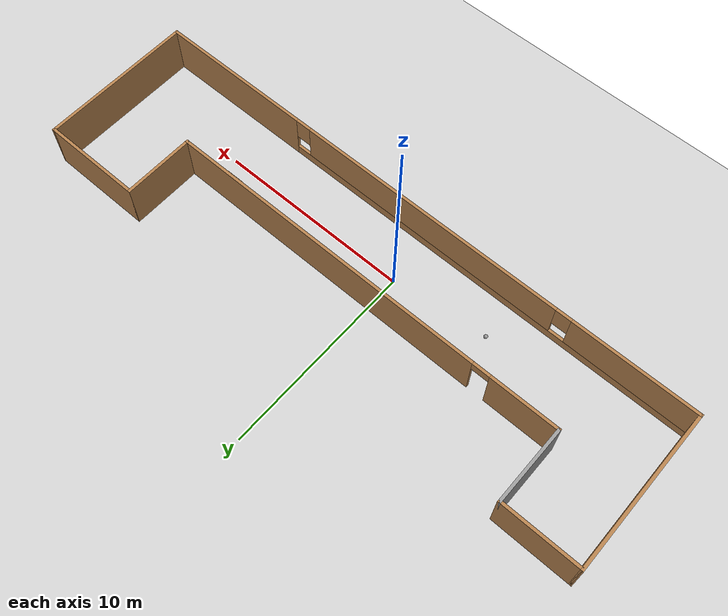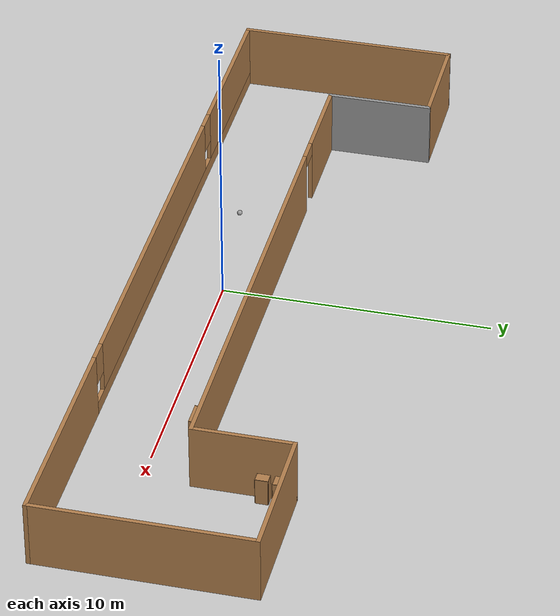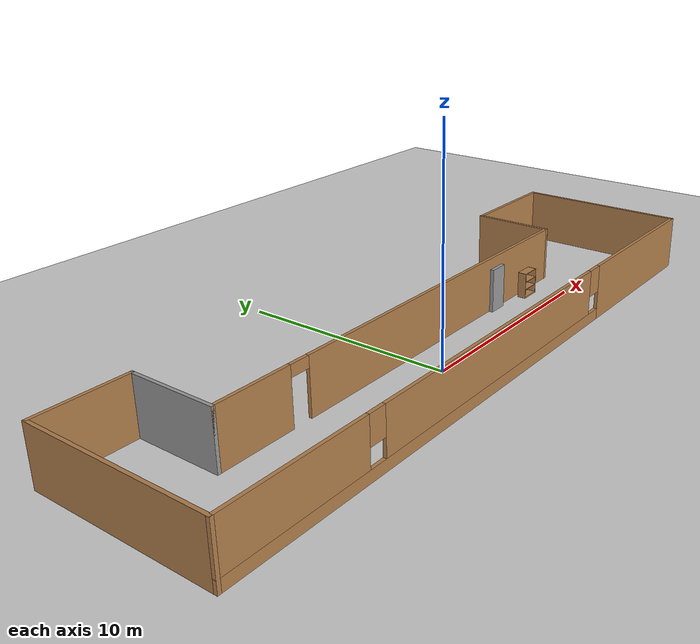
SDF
<sdf version="1.6">
 <world name="default">
  <plugin name="hello" filename="libhello.so"/>
  <light name="sun" type="directional">
   <pose>0 0 10 0 -0 0</pose>
   <diffuse>0.8 0.8 0.8 1</diffuse>
   <specular>0.2 0.2 0.2 1</specular>
   <attenuation>
    <range>1000</range>
    <constant>0.9</constant>
    <linear>0.01</linear>
    <quadratic>0.001</quadratic>
   </attenuation>
   <direction>-0.5 0.1 -0.9</direction>
   <spot><inner_angle>0</inner_angle><outer_angle>0</outer_angle><falloff>0</falloff></spot>
  </light>
  <model name="ground_plane">
   <static>1</static>
   <link name="link">
    <collision name="collision">
     <geometry><plane><normal>0 0 1</normal><size>100 100</size></plane></geometry>
     <surface>
      <contact><collide_bitmask>65535</collide_bitmask></contact>
      <friction><ode><mu>100</mu><mu2>50</mu2></ode></friction>
     </surface>
    </collision>
    <visual name="visual">
     <cast_shadows>0</cast_shadows>
     <geometry><plane><normal>0 0 1</normal><size>100 100</size></plane></geometry>
     <material>
      <script><uri>file://media/materials/scripts/gazebo.material</uri><name>Gazebo/Grey</name></script>
     </material>
    </visual>
   </link>
  </model>
  <gravity>0 0 -9.8</gravity>
  <magnetic_field>6e-06 2.3e-05 -4.2e-05</magnetic_field>
  <atmosphere type="adiabatic"/>
  <physics name="default_physics" default="0" type="ode">
   <max_step_size>0.001</max_step_size>
   <real_time_factor>1</real_time_factor>
   <real_time_update_rate>1000</real_time_update_rate>
  </physics>
  <scene><ambient>0.4 0.4 0.4 1</ambient><background>0.7 0.7 0.7 1</background><shadows>1</shadows></scene>
  <spherical_coordinates>
   <surface_model>EARTH_WGS84</surface_model>
   <latitude_deg>0</latitude_deg>
   <longitude_deg>0</longitude_deg>
   <elevation>0</elevation>
   <heading_deg>0</heading_deg>
  </spherical_coordinates>
  <model name="building1">
   <pose>1.12546 1.55416 0 0 -0 0</pose>
   <link name="Door_1">
    <collision name="Door_1_Collision">
     <geometry><box><size>0.9 0.17 2</size></box></geometry>
     <pose>0 0 1 0 -0 0</pose>
    </collision>
    <visual name="Door_1_Visual">
     <pose>0 0 1 0 -0 0</pose>
     <geometry><box><size>0.9 0.17 2</size></box></geometry>
     <material>
      <script><uri>file://media/materials/scripts/gazebo.material</uri><name>Gazebo/Grey</name></script>
     </material>
    </visual>
    <pose>5.38445 0.037312 0 0 -0 0</pose>
   </link>
   <link name="Wall_1">
    <collision name="Wall_1_Collision">
     <geometry><box><size>4 0.15 2.5</size></box></geometry>
     <pose>0 0 1.25 0 -0 0</pose>
    </collision>
    <visual name="Wall_1_Visual">
     <pose>0 0 1.25 0 -0 0</pose>
     <geometry><box><size>4 0.15 2.5</size></box></geometry>
     <material>
      <script><uri>file://media/materials/scripts/gazebo.material</uri><name>Gazebo/Wood</name></script>
      <ambient>1 1 1 1</ambient>
     </material>
     <meta><layer>0</layer></meta>
    </visual>
    <pose>-13.075 4.05 0 0 -0 0</pose>
   </link>
   <link name="Wall_2">
    <collision name="Wall_2_Collision">
     <geometry><box><size>4 0.15 2.5</size></box></geometry>
     <pose>0 0 1.25 0 -0 0</pose>
    </collision>
    <visual name="Wall_2_Visual">
     <pose>0 0 1.25 0 -0 0</pose>
     <geometry><box><size>4 0.15 2.5</size></box></geometry>
     <material>
      <script><uri>file://media/materials/scripts/gazebo.material</uri><name>Gazebo/Grey</name></script>
      <ambient>1 1 1 1</ambient>
     </material>
     <meta><layer>0</layer></meta>
    </visual>
    <pose>-11.15 2.125 0 0 0 -1.5708</pose>
   </link>
   <link name="Wall_3">
    <pose>-0.6 0.2 0 0 -0 0</pose>
    <visual name="Wall_3_Visual_0">
     <pose>-8.85857 0 1.25 0 -0 0</pose>
     <geometry><box><size>3.53286 0.15 2.5</size></box></geometry>
     <material>
      <script><uri>file://media/materials/scripts/gazebo.material</uri><name>Gazebo/Wood</name></script>
      <ambient>1 1 1 1</ambient>
     </material>
     <meta><layer>0</layer></meta>
    </visual>
    <collision name="Wall_3_Collision_0">
     <geometry><box><size>3.53286 0.15 2.5</size></box></geometry>
     <pose>-8.85857 0 1.25 0 -0 0</pose>
    </collision>
    <visual name="Wall_3_Visual_1">
     <pose>2.21643 0 1.25 0 -0 0</pose>
     <geometry><box><size>16.8171 0.15 2.5</size></box></geometry>
     <material>
      <script><uri>file://media/materials/scripts/gazebo.material</uri><name>Gazebo/Wood</name></script>
      <ambient>1 1 1 1</ambient>
     </material>
     <meta><layer>0</layer></meta>
    </visual>
    <collision name="Wall_3_Collision_1">
     <geometry><box><size>16.8171 0.15 2.5</size></box></geometry>
     <pose>2.21643 0 1.25 0 -0 0</pose>
    </collision>
    <visual name="Wall_3_Visual_2">
     <pose>-6.64214 0 2.25 0 -0 0</pose>
     <geometry><box><size>0.9 0.15 0.5</size></box></geometry>
     <material>
      <script><uri>file://media/materials/scripts/gazebo.material</uri><name>Gazebo/Wood</name></script>
      <ambient>1 1 1 1</ambient>
     </material>
     <meta><layer>0</layer></meta>
    </visual>
    <collision name="Wall_3_Collision_2">
     <geometry><box><size>0.9 0.15 0.5</size></box></geometry>
     <pose>-6.64214 0 2.25 0 -0 0</pose>
    </collision>
   </link>
   <link name="Wall_4">
    <collision name="Wall_4_Collision">
     <geometry><box><size>3.75 0.15 2.5</size></box></geometry>
     <pose>0 0 1.25 0 -0 0</pose>
    </collision>
    <visual name="Wall_4_Visual">
     <pose>0 0 1.25 0 -0 0</pose>
     <geometry><box><size>3.75 0.15 2.5</size></box></geometry>
     <material>
      <script><uri>file://media/materials/scripts/gazebo.material</uri><name>Gazebo/Wood</name></script>
      <ambient>1 1 1 1</ambient>
     </material>
     <meta><layer>0</layer></meta>
    </visual>
    <pose>9.95 2 0 0 -0 1.5708</pose>
   </link>
   <link name="Wall_5">
    <collision name="Wall_5_Collision">
     <geometry><box><size>5.25 0.15 2.5</size></box></geometry>
     <pose>0 0 1.25 0 -0 0</pose>
    </collision>
    <visual name="Wall_5_Visual">
     <pose>0 0 1.25 0 -0 0</pose>
     <geometry><box><size>5.25 0.15 2.5</size></box></geometry>
     <material>
      <script><uri>file://media/materials/scripts/gazebo.material</uri><name>Gazebo/Wood</name></script>
      <ambient>1 1 1 1</ambient>
     </material>
     <meta><layer>0</layer></meta>
    </visual>
    <pose>12.5 3.8 0 0 -0 0</pose>
   </link>
   <link name="Wall_6">
    <collision name="Wall_6_Collision">
     <geometry><box><size>8 0.15 2.5</size></box></geometry>
     <pose>0 0 1.25 0 -0 0</pose>
    </collision>
    <visual name="Wall_6_Visual">
     <pose>0 0 1.25 0 -0 0</pose>
     <geometry><box><size>8 0.15 2.5</size></box></geometry>
     <material>
      <script><uri>file://media/materials/scripts/gazebo.material</uri><name>Gazebo/Wood</name></script>
      <ambient>1 1 1 1</ambient>
     </material>
     <meta><layer>0</layer></meta>
    </visual>
    <pose>15.05 -0.125 0 0 0 -1.5708</pose>
   </link>
   <link name="Wall_7">
    <pose>0 -4.05 0 0 -0 3.14159</pose>
    <visual name="Wall_7_Visual_0">
     <pose>-11.0433 0 1.25 0 -0 0</pose>
     <geometry><box><size>8.16349 0.15 2.5</size></box></geometry>
     <material>
      <script><uri>file://media/materials/scripts/gazebo.material</uri><name>Gazebo/Wood</name></script>
      <ambient>1 1 1 1</ambient>
     </material>
     <meta><layer>0</layer></meta>
    </visual>
    <collision name="Wall_7_Collision_0">
     <geometry><box><size>8.16349 0.15 2.5</size></box></geometry>
     <pose>-11.0433 0 1.25 0 -0 0</pose>
    </collision>
    <visual name="Wall_7_Visual_1">
     <pose>4.08175 0 0.25 0 -0 0</pose>
     <geometry><box><size>22.0865 0.15 0.5</size></box></geometry>
     <material>
      <script><uri>file://media/materials/scripts/gazebo.material</uri><name>Gazebo/Wood</name></script>
      <ambient>1 1 1 1</ambient>
     </material>
     <meta><layer>0</layer></meta>
    </visual>
    <collision name="Wall_7_Collision_1">
     <geometry><box><size>22.0865 0.15 0.5</size></box></geometry>
     <pose>4.08175 0 0.25 0 -0 0</pose>
    </collision>
    <visual name="Wall_7_Visual_2">
     <pose>0.87534 0 1.5 0 -0 0</pose>
     <geometry><box><size>14.0737 0.15 2</size></box></geometry>
     <material>
      <script><uri>file://media/materials/scripts/gazebo.material</uri><name>Gazebo/Wood</name></script>
      <ambient>1 1 1 1</ambient>
     </material>
     <meta><layer>0</layer></meta>
    </visual>
    <collision name="Wall_7_Collision_2">
     <geometry><box><size>14.0737 0.15 2</size></box></geometry>
     <pose>0.87534 0 1.5 0 -0 0</pose>
    </collision>
    <visual name="Wall_7_Visual_3">
     <pose>11.9186 0 1.5 0 -0 0</pose>
     <geometry><box><size>6.41281 0.15 2</size></box></geometry>
     <material>
      <script><uri>file://media/materials/scripts/gazebo.material</uri><name>Gazebo/Wood</name></script>
      <ambient>1 1 1 1</ambient>
     </material>
     <meta><layer>0</layer></meta>
    </visual>
    <collision name="Wall_7_Collision_3">
     <geometry><box><size>6.41281 0.15 2</size></box></geometry>
     <pose>11.9186 0 1.5 0 -0 0</pose>
    </collision>
    <visual name="Wall_7_Visual_4">
     <pose>-6.56151 0 1.9 0 -0 0</pose>
     <geometry><box><size>0.8 0.15 1.2</size></box></geometry>
     <material>
      <script><uri>file://media/materials/scripts/gazebo.material</uri><name>Gazebo/Wood</name></script>
      <ambient>1 1 1 1</ambient>
     </material>
     <meta><layer>0</layer></meta>
    </visual>
    <collision name="Wall_7_Collision_4">
     <geometry><box><size>0.8 0.15 1.2</size></box></geometry>
     <pose>-6.56151 0 1.9 0 -0 0</pose>
    </collision>
    <visual name="Wall_7_Visual_5">
     <pose>8.31219 0 1.9 0 -0 0</pose>
     <geometry><box><size>0.8 0.15 1.2</size></box></geometry>
     <material>
      <script><uri>file://media/materials/scripts/gazebo.material</uri><name>Gazebo/Wood</name></script>
      <ambient>1 1 1 1</ambient>
     </material>
     <meta><layer>0</layer></meta>
    </visual>
    <collision name="Wall_7_Collision_5">
     <geometry><box><size>0.8 0.15 1.2</size></box></geometry>
     <pose>8.31219 0 1.9 0 -0 0</pose>
    </collision>
   </link>
   <link name="Wall_8">
    <collision name="Wall_8_Collision">
     <geometry><box><size>8.25 0.15 2.5</size></box></geometry>
     <pose>0 0 1.25 0 -0 0</pose>
    </collision>
    <visual name="Wall_8_Visual">
     <pose>0 0 1.25 0 -0 0</pose>
     <geometry><box><size>8.25 0.15 2.5</size></box></geometry>
     <material>
      <script><uri>file://media/materials/scripts/gazebo.material</uri><name>Gazebo/Wood</name></script>
      <ambient>1 1 1 1</ambient>
     </material>
     <meta><layer>0</layer></meta>
    </visual>
    <pose>-15.05 0 0 0 -0 1.5708</pose>
   </link>
   <static>1</static>
  </model>
  <model name="cabinet">
   <static>1</static>
   <link name="cabinet_bottom_plate">
    <inertial>
     <pose>0 0 -1 0 -0 0</pose>
     <inertia><ixx>2.05</ixx><ixy>0</ixy><ixz>0</ixz><iyy>2.05</iyy><iyz>0</iyz><izz>2.05</izz></inertia>
     <mass>25</mass>
    </inertial>
    <collision name="cabinet_bottom_plate_geom">
     <pose>0 0 0.01 0 -0 0</pose>
     <geometry><box><size>0.45 0.45 0.02</size></box></geometry>
    </collision>
    <visual name="cabinet_bottom_plate_geom_visual">
     <pose>0 0 0.01 0 -0 0</pose>
     <geometry><box><size>0.45 0.45 0.02</size></box></geometry>
     <material>
      <script><uri>file://media/materials/scripts/gazebo.material</uri><name>Gazebo/Wood</name></script>
     </material>
    </visual>
    <collision name="cabinet_bottom_plate_geom_cabinet_back_plate">
     <pose>0.235 0 0.51 0 -0 0</pose>
     <geometry><box><size>0.02 0.45 1.02</size></box></geometry>
    </collision>
    <visual name="cabinet_bottom_plate_geom_cabinet_back_plate_visual">
     <pose>0.235 0 0.51 0 -0 0</pose>
     <geometry><box><size>0.02 0.45 1.02</size></box></geometry>
     <material>
      <script><uri>file://media/materials/scripts/gazebo.material</uri><name>Gazebo/Wood</name></script>
     </material>
    </visual>
    <collision name="cabinet_bottom_plate_geom_cabinet_left_plate">
     <pose>0 0.235 0.51 0 -0 0</pose>
     <geometry><box><size>0.45 0.02 1.02</size></box></geometry>
    </collision>
    <visual name="cabinet_bottom_plate_geom_cabinet_left_plate_visual">
     <pose>0 0.235 0.51 0 -0 0</pose>
     <geometry><box><size>0.45 0.02 1.02</size></box></geometry>
     <material>
      <script><uri>file://media/materials/scripts/gazebo.material</uri><name>Gazebo/Wood</name></script>
     </material>
    </visual>
    <collision name="cabinet_bottom_plate_geom_cabinet_middle_plate">
     <pose>0 0 0.51 0 -0 0</pose>
     <geometry><box><size>0.45 0.45 0.02</size></box></geometry>
    </collision>
    <visual name="cabinet_bottom_plate_geom_cabinet_middle_plate_visual">
     <pose>0 0 0.51 0 -0 0</pose>
     <geometry><box><size>0.45 0.45 0.02</size></box></geometry>
     <material>
      <script><uri>file://media/materials/scripts/gazebo.material</uri><name>Gazebo/Wood</name></script>
     </material>
    </visual>
    <collision name="cabinet_bottom_plate_geom_cabinet_right_plate">
     <pose>0 -0.235 0.51 0 -0 0</pose>
     <geometry><box><size>0.45 0.02 1.02</size></box></geometry>
    </collision>
    <visual name="cabinet_bottom_plate_geom_cabinet_right_plate_visual">
     <pose>0 -0.235 0.51 0 -0 0</pose>
     <geometry><box><size>0.45 0.02 1.02</size></box></geometry>
     <material>
      <script><uri>file://media/materials/scripts/gazebo.material</uri><name>Gazebo/Wood</name></script>
     </material>
    </visual>
    <collision name="cabinet_bottom_plate_geom_cabinet_top_plate">
     <pose>0 0 1.01 0 -0 0</pose>
     <geometry><box><size>0.45 0.45 0.02</size></box></geometry>
    </collision>
    <visual name="cabinet_bottom_plate_geom_cabinet_top_plate_visual">
     <pose>0 0 1.01 0 -0 0</pose>
     <geometry><box><size>0.45 0.45 0.02</size></box></geometry>
     <material>
      <script><uri>file://media/materials/scripts/gazebo.material</uri><name>Gazebo/Wood</name></script>
     </material>
    </visual>
   </link>
   <pose>11.3712 4.92104 0 0 -0 0</pose>
  </model>
  <model name="cabinet_0">
   <static>1</static>
   <link name="cabinet_bottom_plate">
    <inertial>
     <pose>0 0 -1 0 -0 0</pose>
     <inertia><ixx>2.05</ixx><ixy>0</ixy><ixz>0</ixz><iyy>2.05</iyy><iyz>0</iyz><izz>2.05</izz></inertia>
     <mass>25</mass>
    </inertial>
    <collision name="cabinet_bottom_plate_geom">
     <pose>0 0 0.01 0 -0 0</pose>
     <geometry><box><size>0.45 0.45 0.02</size></box></geometry>
    </collision>
    <visual name="cabinet_bottom_plate_geom_visual">
     <pose>0 0 0.01 0 -0 0</pose>
     <geometry><box><size>0.45 0.45 0.02</size></box></geometry>
     <material>
      <script><uri>file://media/materials/scripts/gazebo.material</uri><name>Gazebo/Wood</name></script>
     </material>
    </visual>
    <collision name="cabinet_bottom_plate_geom_cabinet_back_plate">
     <pose>0.235 0 0.51 0 -0 0</pose>
     <geometry><box><size>0.02 0.45 1.02</size></box></geometry>
    </collision>
    <visual name="cabinet_bottom_plate_geom_cabinet_back_plate_visual">
     <pose>0.235 0 0.51 0 -0 0</pose>
     <geometry><box><size>0.02 0.45 1.02</size></box></geometry>
     <material>
      <script><uri>file://media/materials/scripts/gazebo.material</uri><name>Gazebo/Wood</name></script>
     </material>
    </visual>
    <collision name="cabinet_bottom_plate_geom_cabinet_left_plate">
     <pose>0 0.235 0.51 0 -0 0</pose>
     <geometry><box><size>0.45 0.02 1.02</size></box></geometry>
    </collision>
    <visual name="cabinet_bottom_plate_geom_cabinet_left_plate_visual">
     <pose>0 0.235 0.51 0 -0 0</pose>
     <geometry><box><size>0.45 0.02 1.02</size></box></geometry>
     <material>
      <script><uri>file://media/materials/scripts/gazebo.material</uri><name>Gazebo/Wood</name></script>
     </material>
    </visual>
    <collision name="cabinet_bottom_plate_geom_cabinet_middle_plate">
     <pose>0 0 0.51 0 -0 0</pose>
     <geometry><box><size>0.45 0.45 0.02</size></box></geometry>
    </collision>
    <visual name="cabinet_bottom_plate_geom_cabinet_middle_plate_visual">
     <pose>0 0 0.51 0 -0 0</pose>
     <geometry><box><size>0.45 0.45 0.02</size></box></geometry>
     <material>
      <script><uri>file://media/materials/scripts/gazebo.material</uri><name>Gazebo/Wood</name></script>
     </material>
    </visual>
    <collision name="cabinet_bottom_plate_geom_cabinet_right_plate">
     <pose>0 -0.235 0.51 0 -0 0</pose>
     <geometry><box><size>0.45 0.02 1.02</size></box></geometry>
    </collision>
    <visual name="cabinet_bottom_plate_geom_cabinet_right_plate_visual">
     <pose>0 -0.235 0.51 0 -0 0</pose>
     <geometry><box><size>0.45 0.02 1.02</size></box></geometry>
     <material>
      <script><uri>file://media/materials/scripts/gazebo.material</uri><name>Gazebo/Wood</name></script>
     </material>
    </visual>
    <collision name="cabinet_bottom_plate_geom_cabinet_top_plate">
     <pose>0 0 1.01 0 -0 0</pose>
     <geometry><box><size>0.45 0.45 0.02</size></box></geometry>
    </collision>
    <visual name="cabinet_bottom_plate_geom_cabinet_top_plate_visual">
     <pose>0 0 1.01 0 -0 0</pose>
     <geometry><box><size>0.45 0.45 0.02</size></box></geometry>
     <material>
      <script><uri>file://media/materials/scripts/gazebo.material</uri><name>Gazebo/Wood</name></script>
     </material>
    </visual>
   </link>
   <pose>11.2649 4.2852 0 0 -0 0</pose>
  </model>
  <model name="bookshelf">
   <static>1</static>
   <link name="link">
    <inertial><mass>1</mass></inertial>
    <collision name="back">
     <pose>0 0.005 0.6 0 -0 0</pose>
     <geometry><box><size>0.9 0.01 1.2</size></box></geometry>
    </collision>
    <visual name="visual1">
     <pose>0 0.005 0.6 0 -0 0</pose>
     <geometry><box><size>0.9 0.01 1.2</size></box></geometry>
     <material>
      <script><uri>file://media/materials/scripts/gazebo.material</uri><name>Gazebo/Wood</name></script>
     </material>
    </visual>
    <collision name="left_side">
     <pose>0.45 -0.195 0.6 0 -0 0</pose>
     <geometry><box><size>0.02 0.4 1.2</size></box></geometry>
    </collision>
    <visual name="visual2">
     <pose>0.45 -0.195 0.6 0 -0 0</pose>
     <geometry><box><size>0.02 0.4 1.2</size></box></geometry>
     <material>
      <script><uri>file://media/materials/scripts/gazebo.material</uri><name>Gazebo/Wood</name></script>
     </material>
    </visual>
    <collision name="right_side">
     <pose>-0.45 -0.195 0.6 0 -0 0</pose>
     <geometry><box><size>0.02 0.4 1.2</size></box></geometry>
    </collision>
    <visual name="visual3">
     <pose>-0.45 -0.195 0.6 0 -0 0</pose>
     <geometry><box><size>0.02 0.4 1.2</size></box></geometry>
     <material>
      <script><uri>file://media/materials/scripts/gazebo.material</uri><name>Gazebo/Wood</name></script>
     </material>
    </visual>
    <collision name="bottom">
     <pose>0 -0.195 0.03 0 -0 0</pose>
     <geometry><box><size>0.88 0.4 0.06</size></box></geometry>
    </collision>
    <visual name="visual4">
     <pose>0 -0.195 0.03 0 -0 0</pose>
     <geometry><box><size>0.88 0.4 0.06</size></box></geometry>
     <material>
      <script><uri>file://media/materials/scripts/gazebo.material</uri><name>Gazebo/Wood</name></script>
     </material>
    </visual>
    <collision name="top">
     <pose>0 -0.195 1.19 0 -0 0</pose>
     <geometry><box><size>0.88 0.4 0.02</size></box></geometry>
    </collision>
    <visual name="visual5">
     <pose>0 -0.195 1.19 0 -0 0</pose>
     <geometry><box><size>0.88 0.4 0.02</size></box></geometry>
     <material>
      <script><uri>file://media/materials/scripts/gazebo.material</uri><name>Gazebo/Wood</name></script>
     </material>
    </visual>
    <collision name="low_shelf">
     <pose>0 -0.195 0.43 0 -0 0</pose>
     <geometry><box><size>0.88 0.4 0.02</size></box></geometry>
    </collision>
    <visual name="visual6">
     <pose>0 -0.195 0.43 0 -0 0</pose>
     <geometry><box><size>0.88 0.4 0.02</size></box></geometry>
     <material>
      <script><uri>file://media/materials/scripts/gazebo.material</uri><name>Gazebo/Wood</name></script>
     </material>
    </visual>
    <collision name="high_shelf">
     <pose>0 -0.195 0.8 0 -0 0</pose>
     <geometry><box><size>0.88 0.4 0.02</size></box></geometry>
    </collision>
    <visual name="visual7">
     <pose>0 -0.195 0.8 0 -0 0</pose>
     <geometry><box><size>0.88 0.4 0.02</size></box></geometry>
     <material>
      <script><uri>file://media/materials/scripts/gazebo.material</uri><name>Gazebo/Wood</name></script>
     </material>
    </visual>
   </link>
   <pose>8.73687 1.52636 0 0 -0 0</pose>
  </model>
  <model name="my_ball">
   <link name="link_1">
    <inertial>
     <mass>1</mass>
     <inertia><ixx>0.1</ixx><ixy>0</ixy><ixz>0</ixz><iyy>0.1</iyy><iyz>0</iyz><izz>0.1</izz></inertia>
    </inertial>
    <visual name="visual">
     <geometry><sphere><radius>0.1</radius></sphere></geometry>
     <material>
      <lighting>1</lighting>
      <script><uri>file://media/materials/scripts/gazebo.material</uri><name>Gazebo/Grey</name></script>
      <shader type="pixel"><normal_map>__default__</normal_map></shader>
      <ambient>1 1 1 1</ambient>
      <diffuse>1 1 1 1</diffuse>
      <specular>1 1 1 1</specular>
      <emissive>1 1 1 1</emissive>
     </material>
    </visual>
    <collision name="collision">
     <geometry><sphere><radius>0.1</radius></sphere></geometry>
     <surface>
      <friction>
       <ode><mu>1</mu><mu2>1</mu2><fdir1>0 0 0</fdir1><slip1>0</slip1><slip2>0</slip2></ode>
       <torsional>
        <coefficient>1</coefficient>
        <patch_radius>0</patch_radius>
        <surface_radius>0</surface_radius>
        <use_patch_radius>1</use_patch_radius>
        <ode><slip>0</slip></ode>
       </torsional>
      </friction>
      <bounce><restitution_coefficient>0</restitution_coefficient><threshold>1e+06</threshold></bounce>
      <contact>
       <collide_without_contact>0</collide_without_contact>
       <collide_without_contact_bitmask>1</collide_without_contact_bitmask>
       <collide_bitmask>1</collide_bitmask>
       <ode>
        <soft_cfm>0</soft_cfm>
        <soft_erp>0.2</soft_erp>
        <kp>1e+13</kp>
        <kd>1</kd>
        <max_vel>0.01</max_vel>
        <min_depth>0</min_depth>
       </ode>
       <bullet>
        <split_impulse>1</split_impulse>
        <split_impulse_penetration_threshold>-0.01</split_impulse_penetration_threshold>
        <soft_cfm>0</soft_cfm>
        <soft_erp>0.2</soft_erp>
        <kp>1e+13</kp>
        <kd>1</kd>
       </bullet>
      </contact>
     </surface>
    </collision>
   </link>
   <static>0</static>
   <pose>-4.84376 -0.582294 0.1 0 -0 0</pose>
  </model>
 </world>
</sdf>
